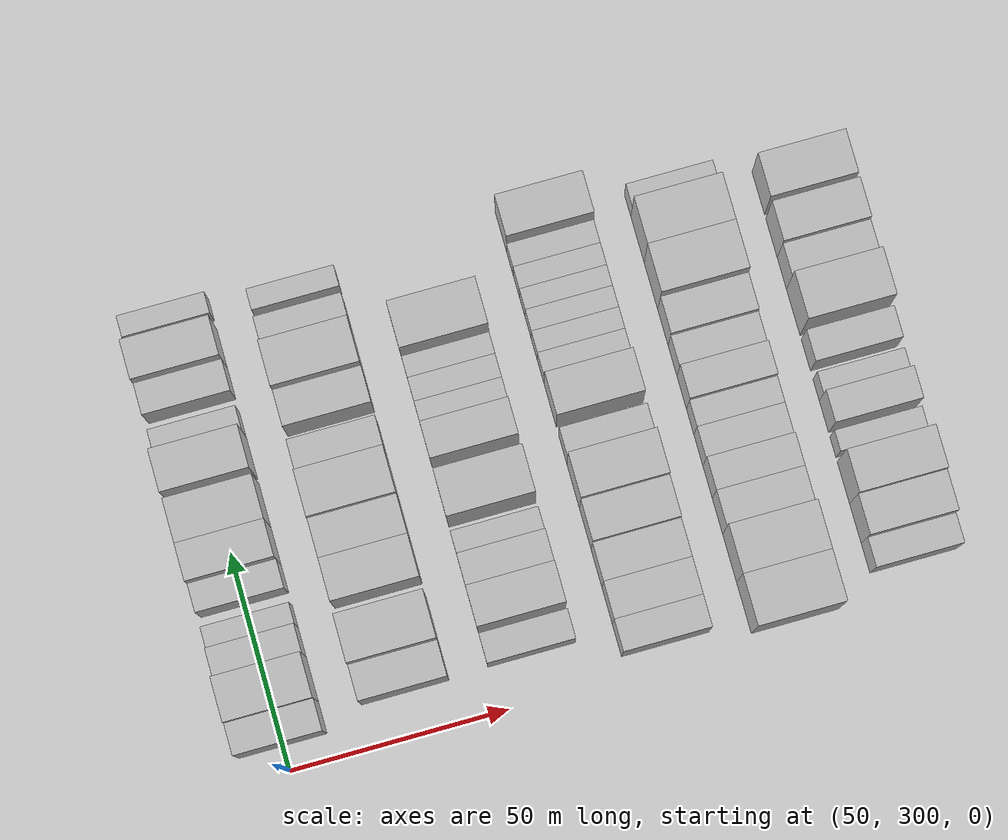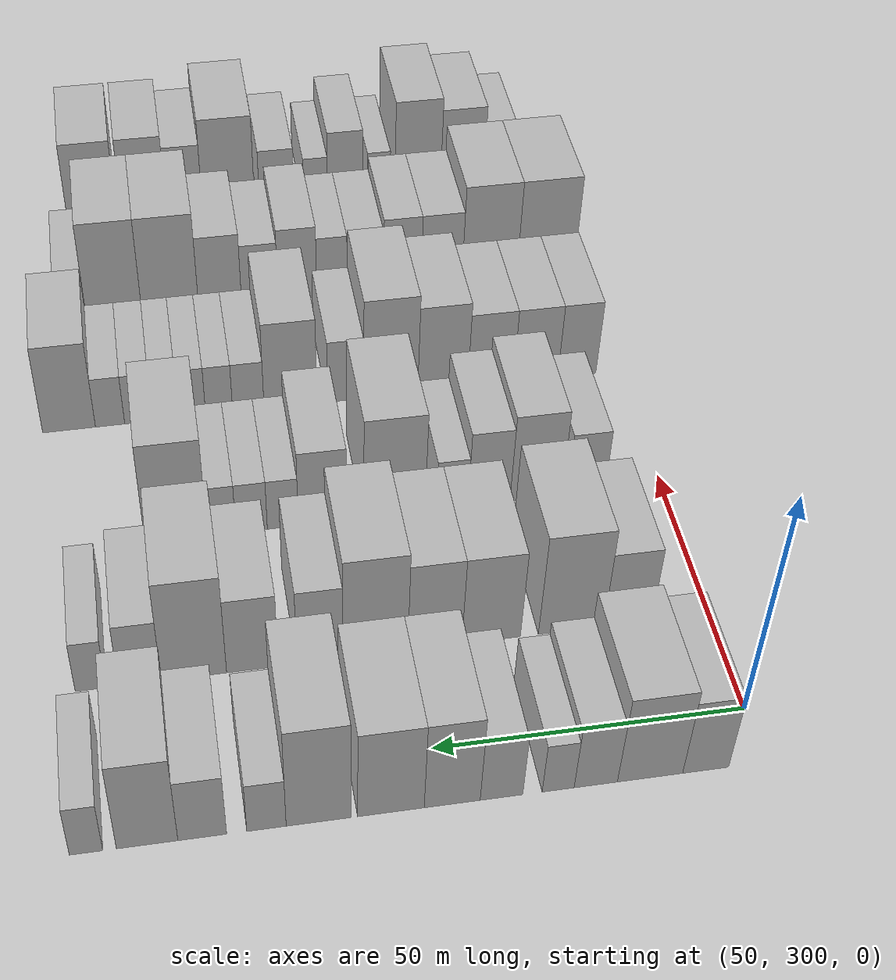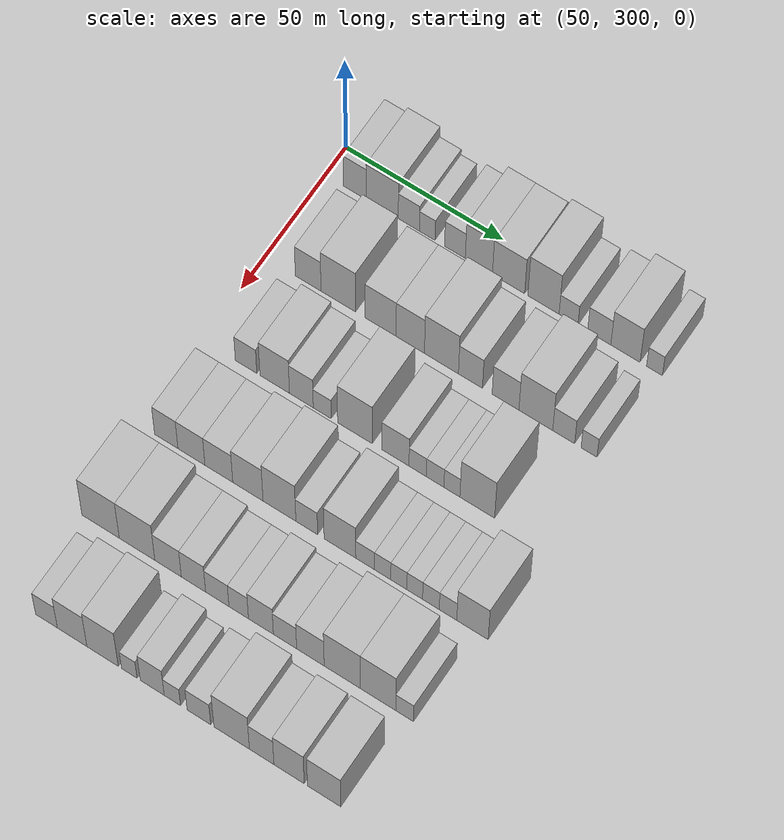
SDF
<sdf version="1.6">
 <world name="default">
  <model name="building_94">
   <static>1</static>
   <pose>50.0000 309.3351 0 0.000000 0.000000 0.000000</pose>
   <link name="link">
    <pose>0 0 9.00 0 0 0</pose>
    <collision name="collision"><geometry><box><size>20.0000 7.2665 18.0000</size></box></geometry></collision>
    <visual name="visual">
     <cast_shadows>0</cast_shadows>
     <geometry><box><size>20.0000 7.2665 18.0000</size></box></geometry>
     <material>
      <script>
       <uri>model://HANNAS_wall/materials/scripts</uri>
       <uri>model://HANNAS_wall/materials/textures</uri>
       <name>vrc/HANNAS_wall</name>
      </script>
     </material>
    </visual>
   </link>
  </model>
  <model name="building_95">
   <static>1</static>
   <pose>50.0000 318.0933 0 0.000000 0.000000 0.000000</pose>
   <link name="link">
    <pose>0 0 10.50 0 0 0</pose>
    <collision name="collision"><geometry><box><size>20.0000 10.2501 21.0000</size></box></geometry></collision>
    <visual name="visual">
     <cast_shadows>0</cast_shadows>
     <geometry><box><size>20.0000 10.2501 21.0000</size></box></geometry>
     <material>
      <script>
       <uri>model://HANNAS_wall/materials/scripts</uri>
       <uri>model://HANNAS_wall/materials/textures</uri>
       <name>vrc/HANNAS_wall</name>
      </script>
     </material>
    </visual>
   </link>
  </model>
  <model name="building_96">
   <static>1</static>
   <pose>50.0000 326.5916 0 0.000000 0.000000 0.000000</pose>
   <link name="link">
    <pose>0 0 7.50 0 0 0</pose>
    <collision name="collision"><geometry><box><size>20.0000 6.7465 15.0000</size></box></geometry></collision>
    <visual name="visual">
     <cast_shadows>0</cast_shadows>
     <geometry><box><size>20.0000 6.7465 15.0000</size></box></geometry>
     <material>
      <script>
       <uri>model://HANNAS_wall/materials/scripts</uri>
       <uri>model://HANNAS_wall/materials/textures</uri>
       <name>vrc/HANNAS_wall</name>
      </script>
     </material>
    </visual>
   </link>
  </model>
  <model name="building_97">
   <static>1</static>
   <pose>50.0000 332.4436 0 0.000000 0.000000 0.000000</pose>
   <link name="link">
    <pose>0 0 6.00 0 0 0</pose>
    <collision name="collision"><geometry><box><size>20.0000 4.9574 12.0000</size></box></geometry></collision>
    <visual name="visual">
     <cast_shadows>0</cast_shadows>
     <geometry><box><size>20.0000 4.9574 12.0000</size></box></geometry>
     <material>
      <script>
       <uri>model://HANNAS_wall/materials/scripts</uri>
       <uri>model://HANNAS_wall/materials/textures</uri>
       <name>vrc/HANNAS_wall</name>
      </script>
     </material>
    </visual>
   </link>
  </model>
  <model name="building_98">
   <static>1</static>
   <pose>50.0000 341.2029 0 0.000000 0.000000 0.000000</pose>
   <link name="link">
    <pose>0 0 7.50 0 0 0</pose>
    <collision name="collision"><geometry><box><size>20.0000 6.5612 15.0000</size></box></geometry></collision>
    <visual name="visual">
     <cast_shadows>0</cast_shadows>
     <geometry><box><size>20.0000 6.5612 15.0000</size></box></geometry>
     <material>
      <script>
       <uri>model://HANNAS_wall/materials/scripts</uri>
       <uri>model://HANNAS_wall/materials/textures</uri>
       <name>vrc/HANNAS_wall</name>
      </script>
     </material>
    </visual>
   </link>
  </model>
  <model name="building_99">
   <static>1</static>
   <pose>50.0000 348.7672 0 0.000000 0.000000 0.000000</pose>
   <link name="link">
    <pose>0 0 10.50 0 0 0</pose>
    <collision name="collision"><geometry><box><size>20.0000 8.5673 21.0000</size></box></geometry></collision>
    <visual name="visual">
     <cast_shadows>0</cast_shadows>
     <geometry><box><size>20.0000 8.5673 21.0000</size></box></geometry>
     <material>
      <script>
       <uri>model://HANNAS_wall/materials/scripts</uri>
       <uri>model://HANNAS_wall/materials/textures</uri>
       <name>vrc/HANNAS_wall</name>
      </script>
     </material>
    </visual>
   </link>
  </model>
  <model name="building_100">
   <static>1</static>
   <pose>50.0000 358.1106 0 0.000000 0.000000 0.000000</pose>
   <link name="link">
    <pose>0 0 10.50 0 0 0</pose>
    <collision name="collision"><geometry><box><size>20.0000 10.1196 21.0000</size></box></geometry></collision>
    <visual name="visual">
     <cast_shadows>0</cast_shadows>
     <geometry><box><size>20.0000 10.1196 21.0000</size></box></geometry>
     <material>
      <script>
       <uri>model://HANNAS_wall/materials/scripts</uri>
       <uri>model://HANNAS_wall/materials/textures</uri>
       <name>vrc/HANNAS_wall</name>
      </script>
     </material>
    </visual>
   </link>
  </model>
  <model name="building_101">
   <static>1</static>
   <pose>50.0000 369.0518 0 0.000000 0.000000 0.000000</pose>
   <link name="link">
    <pose>0 0 12.00 0 0 0</pose>
    <collision name="collision"><geometry><box><size>20.0000 9.7628 24.0000</size></box></geometry></collision>
    <visual name="visual">
     <cast_shadows>0</cast_shadows>
     <geometry><box><size>20.0000 9.7628 24.0000</size></box></geometry>
     <material>
      <script>
       <uri>model://HANNAS_wall/materials/scripts</uri>
       <uri>model://HANNAS_wall/materials/textures</uri>
       <name>vrc/HANNAS_wall</name>
      </script>
     </material>
    </visual>
   </link>
  </model>
  <model name="building_102">
   <static>1</static>
   <pose>50.0000 376.8767 0 0.000000 0.000000 0.000000</pose>
   <link name="link">
    <pose>0 0 6.00 0 0 0</pose>
    <collision name="collision"><geometry><box><size>20.0000 5.8868 12.0000</size></box></geometry></collision>
    <visual name="visual">
     <cast_shadows>0</cast_shadows>
     <geometry><box><size>20.0000 5.8868 12.0000</size></box></geometry>
     <material>
      <script>
       <uri>model://HANNAS_wall/materials/scripts</uri>
       <uri>model://HANNAS_wall/materials/textures</uri>
       <name>vrc/HANNAS_wall</name>
      </script>
     </material>
    </visual>
   </link>
  </model>
  <model name="building_103">
   <static>1</static>
   <pose>50.0000 386.4390 0 0.000000 0.000000 0.000000</pose>
   <link name="link">
    <pose>0 0 7.50 0 0 0</pose>
    <collision name="collision"><geometry><box><size>20.0000 7.2378 15.0000</size></box></geometry></collision>
    <visual name="visual">
     <cast_shadows>0</cast_shadows>
     <geometry><box><size>20.0000 7.2378 15.0000</size></box></geometry>
     <material>
      <script>
       <uri>model://HANNAS_wall/materials/scripts</uri>
       <uri>model://HANNAS_wall/materials/textures</uri>
       <name>vrc/HANNAS_wall</name>
      </script>
     </material>
    </visual>
   </link>
  </model>
  <model name="building_104">
   <static>1</static>
   <pose>50.0000 394.5931 0 0.000000 0.000000 0.000000</pose>
   <link name="link">
    <pose>0 0 10.50 0 0 0</pose>
    <collision name="collision"><geometry><box><size>20.0000 9.0703 21.0000</size></box></geometry></collision>
    <visual name="visual">
     <cast_shadows>0</cast_shadows>
     <geometry><box><size>20.0000 9.0703 21.0000</size></box></geometry>
     <material>
      <script>
       <uri>model://HANNAS_wall/materials/scripts</uri>
       <uri>model://HANNAS_wall/materials/textures</uri>
       <name>vrc/HANNAS_wall</name>
      </script>
     </material>
    </visual>
   </link>
  </model>
  <model name="building_105">
   <static>1</static>
   <pose>50.0000 403.5756 0 0.000000 0.000000 0.000000</pose>
   <link name="link">
    <pose>0 0 6.00 0 0 0</pose>
    <collision name="collision"><geometry><box><size>20.0000 4.8948 12.0000</size></box></geometry></collision>
    <visual name="visual">
     <cast_shadows>0</cast_shadows>
     <geometry><box><size>20.0000 4.8948 12.0000</size></box></geometry>
     <material>
      <script>
       <uri>model://HANNAS_wall/materials/scripts</uri>
       <uri>model://HANNAS_wall/materials/textures</uri>
       <name>vrc/HANNAS_wall</name>
      </script>
     </material>
    </visual>
   </link>
  </model>
  <model name="building_201">
   <static>1</static>
   <pose>79.0000 313.8096 0 0.000000 0.000000 0.000000</pose>
   <link name="link">
    <pose>0 0 9.00 0 0 0</pose>
    <collision name="collision"><geometry><box><size>20.0000 8.1680 18.0000</size></box></geometry></collision>
    <visual name="visual">
     <cast_shadows>0</cast_shadows>
     <geometry><box><size>20.0000 8.1680 18.0000</size></box></geometry>
     <material>
      <script>
       <uri>model://HANNAS_wall/materials/scripts</uri>
       <uri>model://HANNAS_wall/materials/textures</uri>
       <name>vrc/HANNAS_wall</name>
      </script>
     </material>
    </visual>
   </link>
  </model>
  <model name="building_202">
   <static>1</static>
   <pose>79.0000 323.3713 0 0.000000 0.000000 0.000000</pose>
   <link name="link">
    <pose>0 0 12.00 0 0 0</pose>
    <collision name="collision"><geometry><box><size>20.0000 10.9554 24.0000</size></box></geometry></collision>
    <visual name="visual">
     <cast_shadows>0</cast_shadows>
     <geometry><box><size>20.0000 10.9554 24.0000</size></box></geometry>
     <material>
      <script>
       <uri>model://HANNAS_wall/materials/scripts</uri>
       <uri>model://HANNAS_wall/materials/textures</uri>
       <name>vrc/HANNAS_wall</name>
      </script>
     </material>
    </visual>
   </link>
  </model>
  <model name="building_203">
   <static>1</static>
   <pose>79.0000 336.7160 0 0.000000 0.000000 0.000000</pose>
   <link name="link">
    <pose>0 0 10.50 0 0 0</pose>
    <collision name="collision"><geometry><box><size>20.0000 9.7339 21.0000</size></box></geometry></collision>
    <visual name="visual">
     <cast_shadows>0</cast_shadows>
     <geometry><box><size>20.0000 9.7339 21.0000</size></box></geometry>
     <material>
      <script>
       <uri>model://HANNAS_wall/materials/scripts</uri>
       <uri>model://HANNAS_wall/materials/textures</uri>
       <name>vrc/HANNAS_wall</name>
      </script>
     </material>
    </visual>
   </link>
  </model>
  <model name="building_204">
   <static>1</static>
   <pose>79.0000 346.0433 0 0.000000 0.000000 0.000000</pose>
   <link name="link">
    <pose>0 0 10.50 0 0 0</pose>
    <collision name="collision"><geometry><box><size>20.0000 8.9207 21.0000</size></box></geometry></collision>
    <visual name="visual">
     <cast_shadows>0</cast_shadows>
     <geometry><box><size>20.0000 8.9207 21.0000</size></box></geometry>
     <material>
      <script>
       <uri>model://HANNAS_wall/materials/scripts</uri>
       <uri>model://HANNAS_wall/materials/textures</uri>
       <name>vrc/HANNAS_wall</name>
      </script>
     </material>
    </visual>
   </link>
  </model>
  <model name="building_205">
   <static>1</static>
   <pose>79.0000 355.8234 0 0.000000 0.000000 0.000000</pose>
   <link name="link">
    <pose>0 0 12.00 0 0 0</pose>
    <collision name="collision"><geometry><box><size>20.0000 10.6395 24.0000</size></box></geometry></collision>
    <visual name="visual">
     <cast_shadows>0</cast_shadows>
     <geometry><box><size>20.0000 10.6395 24.0000</size></box></geometry>
     <material>
      <script>
       <uri>model://HANNAS_wall/materials/scripts</uri>
       <uri>model://HANNAS_wall/materials/textures</uri>
       <name>vrc/HANNAS_wall</name>
      </script>
     </material>
    </visual>
   </link>
  </model>
  <model name="building_206">
   <static>1</static>
   <pose>79.0000 364.8946 0 0.000000 0.000000 0.000000</pose>
   <link name="link">
    <pose>0 0 9.00 0 0 0</pose>
    <collision name="collision"><geometry><box><size>20.0000 7.5029 18.0000</size></box></geometry></collision>
    <visual name="visual">
     <cast_shadows>0</cast_shadows>
     <geometry><box><size>20.0000 7.5029 18.0000</size></box></geometry>
     <material>
      <script>
       <uri>model://HANNAS_wall/materials/scripts</uri>
       <uri>model://HANNAS_wall/materials/textures</uri>
       <name>vrc/HANNAS_wall</name>
      </script>
     </material>
    </visual>
   </link>
  </model>
  <model name="building_207">
   <static>1</static>
   <pose>79.0000 375.8046 0 0.000000 0.000000 0.000000</pose>
   <link name="link">
    <pose>0 0 9.00 0 0 0</pose>
    <collision name="collision"><geometry><box><size>20.0000 8.3171 18.0000</size></box></geometry></collision>
    <visual name="visual">
     <cast_shadows>0</cast_shadows>
     <geometry><box><size>20.0000 8.3171 18.0000</size></box></geometry>
     <material>
      <script>
       <uri>model://HANNAS_wall/materials/scripts</uri>
       <uri>model://HANNAS_wall/materials/textures</uri>
       <name>vrc/HANNAS_wall</name>
      </script>
     </material>
    </visual>
   </link>
  </model>
  <model name="building_208">
   <static>1</static>
   <pose>79.0000 385.2007 0 0.000000 0.000000 0.000000</pose>
   <link name="link">
    <pose>0 0 12.00 0 0 0</pose>
    <collision name="collision"><geometry><box><size>20.0000 10.4751 24.0000</size></box></geometry></collision>
    <visual name="visual">
     <cast_shadows>0</cast_shadows>
     <geometry><box><size>20.0000 10.4751 24.0000</size></box></geometry>
     <material>
      <script>
       <uri>model://HANNAS_wall/materials/scripts</uri>
       <uri>model://HANNAS_wall/materials/textures</uri>
       <name>vrc/HANNAS_wall</name>
      </script>
     </material>
    </visual>
   </link>
  </model>
  <model name="building_209">
   <static>1</static>
   <pose>79.0000 393.8212 0 0.000000 0.000000 0.000000</pose>
   <link name="link">
    <pose>0 0 7.50 0 0 0</pose>
    <collision name="collision"><geometry><box><size>20.0000 6.7659 15.0000</size></box></geometry></collision>
    <visual name="visual">
     <cast_shadows>0</cast_shadows>
     <geometry><box><size>20.0000 6.7659 15.0000</size></box></geometry>
     <material>
      <script>
       <uri>model://HANNAS_wall/materials/scripts</uri>
       <uri>model://HANNAS_wall/materials/textures</uri>
       <name>vrc/HANNAS_wall</name>
      </script>
     </material>
    </visual>
   </link>
  </model>
  <model name="building_210">
   <static>1</static>
   <pose>79.0000 401.6524 0 0.000000 0.000000 0.000000</pose>
   <link name="link">
    <pose>0 0 6.00 0 0 0</pose>
    <collision name="collision"><geometry><box><size>20.0000 4.8963 12.0000</size></box></geometry></collision>
    <visual name="visual">
     <cast_shadows>0</cast_shadows>
     <geometry><box><size>20.0000 4.8963 12.0000</size></box></geometry>
     <material>
      <script>
       <uri>model://HANNAS_wall/materials/scripts</uri>
       <uri>model://HANNAS_wall/materials/textures</uri>
       <name>vrc/HANNAS_wall</name>
      </script>
     </material>
    </visual>
   </link>
  </model>
  <model name="building_319">
   <static>1</static>
   <pose>108.0000 313.6046 0 0.000000 0.000000 0.000000</pose>
   <link name="link">
    <pose>0 0 7.50 0 0 0</pose>
    <collision name="collision"><geometry><box><size>20.0000 6.7968 15.0000</size></box></geometry></collision>
    <visual name="visual">
     <cast_shadows>0</cast_shadows>
     <geometry><box><size>20.0000 6.7968 15.0000</size></box></geometry>
     <material>
      <script>
       <uri>model://HANNAS_wall/materials/scripts</uri>
       <uri>model://HANNAS_wall/materials/textures</uri>
       <name>vrc/HANNAS_wall</name>
      </script>
     </material>
    </visual>
   </link>
  </model>
  <model name="building_320">
   <static>1</static>
   <pose>108.0000 322.6522 0 0.000000 0.000000 0.000000</pose>
   <link name="link">
    <pose>0 0 10.50 0 0 0</pose>
    <collision name="collision"><geometry><box><size>20.0000 9.2984 21.0000</size></box></geometry></collision>
    <visual name="visual">
     <cast_shadows>0</cast_shadows>
     <geometry><box><size>20.0000 9.2984 21.0000</size></box></geometry>
     <material>
      <script>
       <uri>model://HANNAS_wall/materials/scripts</uri>
       <uri>model://HANNAS_wall/materials/textures</uri>
       <name>vrc/HANNAS_wall</name>
      </script>
     </material>
    </visual>
   </link>
  </model>
  <model name="building_321">
   <static>1</static>
   <pose>108.0000 331.0445 0 0.000000 0.000000 0.000000</pose>
   <link name="link">
    <pose>0 0 9.00 0 0 0</pose>
    <collision name="collision"><geometry><box><size>20.0000 7.4862 18.0000</size></box></geometry></collision>
    <visual name="visual">
     <cast_shadows>0</cast_shadows>
     <geometry><box><size>20.0000 7.4862 18.0000</size></box></geometry>
     <material>
      <script>
       <uri>model://HANNAS_wall/materials/scripts</uri>
       <uri>model://HANNAS_wall/materials/textures</uri>
       <name>vrc/HANNAS_wall</name>
      </script>
     </material>
    </visual>
   </link>
  </model>
  <model name="building_322">
   <static>1</static>
   <pose>108.0000 337.6013 0 0.000000 0.000000 0.000000</pose>
   <link name="link">
    <pose>0 0 6.00 0 0 0</pose>
    <collision name="collision"><geometry><box><size>20.0000 5.6273 12.0000</size></box></geometry></collision>
    <visual name="visual">
     <cast_shadows>0</cast_shadows>
     <geometry><box><size>20.0000 5.6273 12.0000</size></box></geometry>
     <material>
      <script>
       <uri>model://HANNAS_wall/materials/scripts</uri>
       <uri>model://HANNAS_wall/materials/textures</uri>
       <name>vrc/HANNAS_wall</name>
      </script>
     </material>
    </visual>
   </link>
  </model>
  <model name="building_323">
   <static>1</static>
   <pose>108.0000 347.8295 0 0.000000 0.000000 0.000000</pose>
   <link name="link">
    <pose>0 0 12.00 0 0 0</pose>
    <collision name="collision"><geometry><box><size>20.0000 10.8292 24.0000</size></box></geometry></collision>
    <visual name="visual">
     <cast_shadows>0</cast_shadows>
     <geometry><box><size>20.0000 10.8292 24.0000</size></box></geometry>
     <material>
      <script>
       <uri>model://HANNAS_wall/materials/scripts</uri>
       <uri>model://HANNAS_wall/materials/textures</uri>
       <name>vrc/HANNAS_wall</name>
      </script>
     </material>
    </visual>
   </link>
  </model>
  <model name="building_324">
   <static>1</static>
   <pose>108.0000 360.4538 0 0.000000 0.000000 0.000000</pose>
   <link name="link">
    <pose>0 0 9.00 0 0 0</pose>
    <collision name="collision"><geometry><box><size>20.0000 8.4195 18.0000</size></box></geometry></collision>
    <visual name="visual">
     <cast_shadows>0</cast_shadows>
     <geometry><box><size>20.0000 8.4195 18.0000</size></box></geometry>
     <material>
      <script>
       <uri>model://HANNAS_wall/materials/scripts</uri>
       <uri>model://HANNAS_wall/materials/textures</uri>
       <name>vrc/HANNAS_wall</name>
      </script>
     </material>
    </visual>
   </link>
  </model>
  <model name="building_325">
   <static>1</static>
   <pose>108.0000 367.3556 0 0.000000 0.000000 0.000000</pose>
   <link name="link">
    <pose>0 0 6.00 0 0 0</pose>
    <collision name="collision"><geometry><box><size>20.0000 5.3840 12.0000</size></box></geometry></collision>
    <visual name="visual">
     <cast_shadows>0</cast_shadows>
     <geometry><box><size>20.0000 5.3840 12.0000</size></box></geometry>
     <material>
      <script>
       <uri>model://HANNAS_wall/materials/scripts</uri>
       <uri>model://HANNAS_wall/materials/textures</uri>
       <name>vrc/HANNAS_wall</name>
      </script>
     </material>
    </visual>
   </link>
  </model>
  <model name="building_326">
   <static>1</static>
   <pose>108.0000 372.7697 0 0.000000 0.000000 0.000000</pose>
   <link name="link">
    <pose>0 0 6.00 0 0 0</pose>
    <collision name="collision"><geometry><box><size>20.0000 5.4442 12.0000</size></box></geometry></collision>
    <visual name="visual">
     <cast_shadows>0</cast_shadows>
     <geometry><box><size>20.0000 5.4442 12.0000</size></box></geometry>
     <material>
      <script>
       <uri>model://HANNAS_wall/materials/scripts</uri>
       <uri>model://HANNAS_wall/materials/textures</uri>
       <name>vrc/HANNAS_wall</name>
      </script>
     </material>
    </visual>
   </link>
  </model>
  <model name="building_327">
   <static>1</static>
   <pose>108.0000 377.9632 0 0.000000 0.000000 0.000000</pose>
   <link name="link">
    <pose>0 0 6.00 0 0 0</pose>
    <collision name="collision"><geometry><box><size>20.0000 4.9428 12.0000</size></box></geometry></collision>
    <visual name="visual">
     <cast_shadows>0</cast_shadows>
     <geometry><box><size>20.0000 4.9428 12.0000</size></box></geometry>
     <material>
      <script>
       <uri>model://HANNAS_wall/materials/scripts</uri>
       <uri>model://HANNAS_wall/materials/textures</uri>
       <name>vrc/HANNAS_wall</name>
      </script>
     </material>
    </visual>
   </link>
  </model>
  <model name="building_328">
   <static>1</static>
   <pose>108.0000 385.7849 0 0.000000 0.000000 0.000000</pose>
   <link name="link">
    <pose>0 0 12.00 0 0 0</pose>
    <collision name="collision"><geometry><box><size>20.0000 10.7004 24.0000</size></box></geometry></collision>
    <visual name="visual">
     <cast_shadows>0</cast_shadows>
     <geometry><box><size>20.0000 10.7004 24.0000</size></box></geometry>
     <material>
      <script>
       <uri>model://HANNAS_wall/materials/scripts</uri>
       <uri>model://HANNAS_wall/materials/textures</uri>
       <name>vrc/HANNAS_wall</name>
      </script>
     </material>
    </visual>
   </link>
  </model>
  <model name="building_428">
   <static>1</static>
   <pose>137.0000 308.1258 0 0.000000 0.000000 0.000000</pose>
   <link name="link">
    <pose>0 0 9.00 0 0 0</pose>
    <collision name="collision"><geometry><box><size>20.0000 7.3621 18.0000</size></box></geometry></collision>
    <visual name="visual">
     <cast_shadows>0</cast_shadows>
     <geometry><box><size>20.0000 7.3621 18.0000</size></box></geometry>
     <material>
      <script>
       <uri>model://HANNAS_wall/materials/scripts</uri>
       <uri>model://HANNAS_wall/materials/textures</uri>
       <name>vrc/HANNAS_wall</name>
      </script>
     </material>
    </visual>
   </link>
  </model>
  <model name="building_429">
   <static>1</static>
   <pose>137.0000 316.0578 0 0.000000 0.000000 0.000000</pose>
   <link name="link">
    <pose>0 0 9.00 0 0 0</pose>
    <collision name="collision"><geometry><box><size>20.0000 8.5018 18.0000</size></box></geometry></collision>
    <visual name="visual">
     <cast_shadows>0</cast_shadows>
     <geometry><box><size>20.0000 8.5018 18.0000</size></box></geometry>
     <material>
      <script>
       <uri>model://HANNAS_wall/materials/scripts</uri>
       <uri>model://HANNAS_wall/materials/textures</uri>
       <name>vrc/HANNAS_wall</name>
      </script>
     </material>
    </visual>
   </link>
  </model>
  <model name="building_430">
   <static>1</static>
   <pose>137.0000 324.6746 0 0.000000 0.000000 0.000000</pose>
   <link name="link">
    <pose>0 0 9.00 0 0 0</pose>
    <collision name="collision"><geometry><box><size>20.0000 8.7320 18.0000</size></box></geometry></collision>
    <visual name="visual">
     <cast_shadows>0</cast_shadows>
     <geometry><box><size>20.0000 8.7320 18.0000</size></box></geometry>
     <material>
      <script>
       <uri>model://HANNAS_wall/materials/scripts</uri>
       <uri>model://HANNAS_wall/materials/textures</uri>
       <name>vrc/HANNAS_wall</name>
      </script>
     </material>
    </visual>
   </link>
  </model>
  <model name="building_431">
   <static>1</static>
   <pose>137.0000 333.7770 0 0.000000 0.000000 0.000000</pose>
   <link name="link">
    <pose>0 0 10.50 0 0 0</pose>
    <collision name="collision"><geometry><box><size>20.0000 9.4727 21.0000</size></box></geometry></collision>
    <visual name="visual">
     <cast_shadows>0</cast_shadows>
     <geometry><box><size>20.0000 9.4727 21.0000</size></box></geometry>
     <material>
      <script>
       <uri>model://HANNAS_wall/materials/scripts</uri>
       <uri>model://HANNAS_wall/materials/textures</uri>
       <name>vrc/HANNAS_wall</name>
      </script>
     </material>
    </visual>
   </link>
  </model>
  <model name="building_432">
   <static>1</static>
   <pose>137.0000 343.6271 0 0.000000 0.000000 0.000000</pose>
   <link name="link">
    <pose>0 0 12.00 0 0 0</pose>
    <collision name="collision"><geometry><box><size>20.0000 10.2276 24.0000</size></box></geometry></collision>
    <visual name="visual">
     <cast_shadows>0</cast_shadows>
     <geometry><box><size>20.0000 10.2276 24.0000</size></box></geometry>
     <material>
      <script>
       <uri>model://HANNAS_wall/materials/scripts</uri>
       <uri>model://HANNAS_wall/materials/textures</uri>
       <name>vrc/HANNAS_wall</name>
      </script>
     </material>
    </visual>
   </link>
  </model>
  <model name="building_433">
   <static>1</static>
   <pose>137.0000 352.1221 0 0.000000 0.000000 0.000000</pose>
   <link name="link">
    <pose>0 0 7.50 0 0 0</pose>
    <collision name="collision"><geometry><box><size>20.0000 6.7624 15.0000</size></box></geometry></collision>
    <visual name="visual">
     <cast_shadows>0</cast_shadows>
     <geometry><box><size>20.0000 6.7624 15.0000</size></box></geometry>
     <material>
      <script>
       <uri>model://HANNAS_wall/materials/scripts</uri>
       <uri>model://HANNAS_wall/materials/textures</uri>
       <name>vrc/HANNAS_wall</name>
      </script>
     </material>
    </visual>
   </link>
  </model>
  <model name="building_434">
   <static>1</static>
   <pose>137.0000 362.4011 0 0.000000 0.000000 0.000000</pose>
   <link name="link">
    <pose>0 0 10.50 0 0 0</pose>
    <collision name="collision"><geometry><box><size>20.0000 9.7956 21.0000</size></box></geometry></collision>
    <visual name="visual">
     <cast_shadows>0</cast_shadows>
     <geometry><box><size>20.0000 9.7956 21.0000</size></box></geometry>
     <material>
      <script>
       <uri>model://HANNAS_wall/materials/scripts</uri>
       <uri>model://HANNAS_wall/materials/textures</uri>
       <name>vrc/HANNAS_wall</name>
      </script>
     </material>
    </visual>
   </link>
  </model>
  <model name="building_435">
   <static>1</static>
   <pose>137.0000 370.2016 0 0.000000 0.000000 0.000000</pose>
   <link name="link">
    <pose>0 0 6.00 0 0 0</pose>
    <collision name="collision"><geometry><box><size>20.0000 5.8054 12.0000</size></box></geometry></collision>
    <visual name="visual">
     <cast_shadows>0</cast_shadows>
     <geometry><box><size>20.0000 5.8054 12.0000</size></box></geometry>
     <material>
      <script>
       <uri>model://HANNAS_wall/materials/scripts</uri>
       <uri>model://HANNAS_wall/materials/textures</uri>
       <name>vrc/HANNAS_wall</name>
      </script>
     </material>
    </visual>
   </link>
  </model>
  <model name="building_436">
   <static>1</static>
   <pose>137.0000 375.5960 0 0.000000 0.000000 0.000000</pose>
   <link name="link">
    <pose>0 0 6.00 0 0 0</pose>
    <collision name="collision"><geometry><box><size>20.0000 4.9834 12.0000</size></box></geometry></collision>
    <visual name="visual">
     <cast_shadows>0</cast_shadows>
     <geometry><box><size>20.0000 4.9834 12.0000</size></box></geometry>
     <material>
      <script>
       <uri>model://HANNAS_wall/materials/scripts</uri>
       <uri>model://HANNAS_wall/materials/textures</uri>
       <name>vrc/HANNAS_wall</name>
      </script>
     </material>
    </visual>
   </link>
  </model>
  <model name="building_437">
   <static>1</static>
   <pose>137.0000 380.5612 0 0.000000 0.000000 0.000000</pose>
   <link name="link">
    <pose>0 0 6.00 0 0 0</pose>
    <collision name="collision"><geometry><box><size>20.0000 4.9469 12.0000</size></box></geometry></collision>
    <visual name="visual">
     <cast_shadows>0</cast_shadows>
     <geometry><box><size>20.0000 4.9469 12.0000</size></box></geometry>
     <material>
      <script>
       <uri>model://HANNAS_wall/materials/scripts</uri>
       <uri>model://HANNAS_wall/materials/textures</uri>
       <name>vrc/HANNAS_wall</name>
      </script>
     </material>
    </visual>
   </link>
  </model>
  <model name="building_438">
   <static>1</static>
   <pose>137.0000 385.4380 0 0.000000 0.000000 0.000000</pose>
   <link name="link">
    <pose>0 0 6.00 0 0 0</pose>
    <collision name="collision"><geometry><box><size>20.0000 4.8066 12.0000</size></box></geometry></collision>
    <visual name="visual">
     <cast_shadows>0</cast_shadows>
     <geometry><box><size>20.0000 4.8066 12.0000</size></box></geometry>
     <material>
      <script>
       <uri>model://HANNAS_wall/materials/scripts</uri>
       <uri>model://HANNAS_wall/materials/textures</uri>
       <name>vrc/HANNAS_wall</name>
      </script>
     </material>
    </visual>
   </link>
  </model>
  <model name="building_439">
   <static>1</static>
   <pose>137.0000 390.3975 0 0.000000 0.000000 0.000000</pose>
   <link name="link">
    <pose>0 0 6.00 0 0 0</pose>
    <collision name="collision"><geometry><box><size>20.0000 5.1124 12.0000</size></box></geometry></collision>
    <visual name="visual">
     <cast_shadows>0</cast_shadows>
     <geometry><box><size>20.0000 5.1124 12.0000</size></box></geometry>
     <material>
      <script>
       <uri>model://HANNAS_wall/materials/scripts</uri>
       <uri>model://HANNAS_wall/materials/textures</uri>
       <name>vrc/HANNAS_wall</name>
      </script>
     </material>
    </visual>
   </link>
  </model>
  <model name="building_440">
   <static>1</static>
   <pose>137.0000 395.6224 0 0.000000 0.000000 0.000000</pose>
   <link name="link">
    <pose>0 0 6.00 0 0 0</pose>
    <collision name="collision"><geometry><box><size>20.0000 5.3375 12.0000</size></box></geometry></collision>
    <visual name="visual">
     <cast_shadows>0</cast_shadows>
     <geometry><box><size>20.0000 5.3375 12.0000</size></box></geometry>
     <material>
      <script>
       <uri>model://HANNAS_wall/materials/scripts</uri>
       <uri>model://HANNAS_wall/materials/textures</uri>
       <name>vrc/HANNAS_wall</name>
      </script>
     </material>
    </visual>
   </link>
  </model>
  <model name="building_441">
   <static>1</static>
   <pose>137.0000 403.0795 0 0.000000 0.000000 0.000000</pose>
   <link name="link">
    <pose>0 0 10.50 0 0 0</pose>
    <collision name="collision"><geometry><box><size>20.0000 9.5769 21.0000</size></box></geometry></collision>
    <visual name="visual">
     <cast_shadows>0</cast_shadows>
     <geometry><box><size>20.0000 9.5769 21.0000</size></box></geometry>
     <material>
      <script>
       <uri>model://HANNAS_wall/materials/scripts</uri>
       <uri>model://HANNAS_wall/materials/textures</uri>
       <name>vrc/HANNAS_wall</name>
      </script>
     </material>
    </visual>
   </link>
  </model>
  <model name="building_545">
   <static>1</static>
   <pose>166.0000 307.4736 0 0.000000 0.000000 0.000000</pose>
   <link name="link">
    <pose>0 0 12.00 0 0 0</pose>
    <collision name="collision"><geometry><box><size>20.0000 11.7153 24.0000</size></box></geometry></collision>
    <visual name="visual">
     <cast_shadows>0</cast_shadows>
     <geometry><box><size>20.0000 11.7153 24.0000</size></box></geometry>
     <material>
      <script>
       <uri>model://HANNAS_wall/materials/scripts</uri>
       <uri>model://HANNAS_wall/materials/textures</uri>
       <name>vrc/HANNAS_wall</name>
      </script>
     </material>
    </visual>
   </link>
  </model>
  <model name="building_546">
   <static>1</static>
   <pose>166.0000 318.9044 0 0.000000 0.000000 0.000000</pose>
   <link name="link">
    <pose>0 0 12.00 0 0 0</pose>
    <collision name="collision"><geometry><box><size>20.0000 11.1465 24.0000</size></box></geometry></collision>
    <visual name="visual">
     <cast_shadows>0</cast_shadows>
     <geometry><box><size>20.0000 11.1465 24.0000</size></box></geometry>
     <material>
      <script>
       <uri>model://HANNAS_wall/materials/scripts</uri>
       <uri>model://HANNAS_wall/materials/textures</uri>
       <name>vrc/HANNAS_wall</name>
      </script>
     </material>
    </visual>
   </link>
  </model>
  <model name="building_547">
   <static>1</static>
   <pose>166.0000 328.6042 0 0.000000 0.000000 0.000000</pose>
   <link name="link">
    <pose>0 0 9.00 0 0 0</pose>
    <collision name="collision"><geometry><box><size>20.0000 8.2530 18.0000</size></box></geometry></collision>
    <visual name="visual">
     <cast_shadows>0</cast_shadows>
     <geometry><box><size>20.0000 8.2530 18.0000</size></box></geometry>
     <material>
      <script>
       <uri>model://HANNAS_wall/materials/scripts</uri>
       <uri>model://HANNAS_wall/materials/textures</uri>
       <name>vrc/HANNAS_wall</name>
      </script>
     </material>
    </visual>
   </link>
  </model>
  <model name="building_548">
   <static>1</static>
   <pose>166.0000 336.5016 0 0.000000 0.000000 0.000000</pose>
   <link name="link">
    <pose>0 0 9.00 0 0 0</pose>
    <collision name="collision"><geometry><box><size>20.0000 7.5419 18.0000</size></box></geometry></collision>
    <visual name="visual">
     <cast_shadows>0</cast_shadows>
     <geometry><box><size>20.0000 7.5419 18.0000</size></box></geometry>
     <material>
      <script>
       <uri>model://HANNAS_wall/materials/scripts</uri>
       <uri>model://HANNAS_wall/materials/textures</uri>
       <name>vrc/HANNAS_wall</name>
      </script>
     </material>
    </visual>
   </link>
  </model>
  <model name="building_549">
   <static>1</static>
   <pose>166.0000 343.8983 0 0.000000 0.000000 0.000000</pose>
   <link name="link">
    <pose>0 0 7.50 0 0 0</pose>
    <collision name="collision"><geometry><box><size>20.0000 7.2516 15.0000</size></box></geometry></collision>
    <visual name="visual">
     <cast_shadows>0</cast_shadows>
     <geometry><box><size>20.0000 7.2516 15.0000</size></box></geometry>
     <material>
      <script>
       <uri>model://HANNAS_wall/materials/scripts</uri>
       <uri>model://HANNAS_wall/materials/textures</uri>
       <name>vrc/HANNAS_wall</name>
      </script>
     </material>
    </visual>
   </link>
  </model>
  <model name="building_550">
   <static>1</static>
   <pose>166.0000 350.5445 0 0.000000 0.000000 0.000000</pose>
   <link name="link">
    <pose>0 0 7.50 0 0 0</pose>
    <collision name="collision"><geometry><box><size>20.0000 6.0407 15.0000</size></box></geometry></collision>
    <visual name="visual">
     <cast_shadows>0</cast_shadows>
     <geometry><box><size>20.0000 6.0407 15.0000</size></box></geometry>
     <material>
      <script>
       <uri>model://HANNAS_wall/materials/scripts</uri>
       <uri>model://HANNAS_wall/materials/textures</uri>
       <name>vrc/HANNAS_wall</name>
      </script>
     </material>
    </visual>
   </link>
  </model>
  <model name="building_551">
   <static>1</static>
   <pose>166.0000 357.4040 0 0.000000 0.000000 0.000000</pose>
   <link name="link">
    <pose>0 0 9.00 0 0 0</pose>
    <collision name="collision"><geometry><box><size>20.0000 7.6783 18.0000</size></box></geometry></collision>
    <visual name="visual">
     <cast_shadows>0</cast_shadows>
     <geometry><box><size>20.0000 7.6783 18.0000</size></box></geometry>
     <material>
      <script>
       <uri>model://HANNAS_wall/materials/scripts</uri>
       <uri>model://HANNAS_wall/materials/textures</uri>
       <name>vrc/HANNAS_wall</name>
      </script>
     </material>
    </visual>
   </link>
  </model>
  <model name="building_552">
   <static>1</static>
   <pose>166.0000 364.8204 0 0.000000 0.000000 0.000000</pose>
   <link name="link">
    <pose>0 0 7.50 0 0 0</pose>
    <collision name="collision"><geometry><box><size>20.0000 7.1547 15.0000</size></box></geometry></collision>
    <visual name="visual">
     <cast_shadows>0</cast_shadows>
     <geometry><box><size>20.0000 7.1547 15.0000</size></box></geometry>
     <material>
      <script>
       <uri>model://HANNAS_wall/materials/scripts</uri>
       <uri>model://HANNAS_wall/materials/textures</uri>
       <name>vrc/HANNAS_wall</name>
      </script>
     </material>
    </visual>
   </link>
  </model>
  <model name="building_553">
   <static>1</static>
   <pose>166.0000 372.6175 0 0.000000 0.000000 0.000000</pose>
   <link name="link">
    <pose>0 0 9.00 0 0 0</pose>
    <collision name="collision"><geometry><box><size>20.0000 8.4395 18.0000</size></box></geometry></collision>
    <visual name="visual">
     <cast_shadows>0</cast_shadows>
     <geometry><box><size>20.0000 8.4395 18.0000</size></box></geometry>
     <material>
      <script>
       <uri>model://HANNAS_wall/materials/scripts</uri>
       <uri>model://HANNAS_wall/materials/textures</uri>
       <name>vrc/HANNAS_wall</name>
      </script>
     </material>
    </visual>
   </link>
  </model>
  <model name="building_554">
   <static>1</static>
   <pose>166.0000 382.3722 0 0.000000 0.000000 0.000000</pose>
   <link name="link">
    <pose>0 0 12.00 0 0 0</pose>
    <collision name="collision"><geometry><box><size>20.0000 11.0698 24.0000</size></box></geometry></collision>
    <visual name="visual">
     <cast_shadows>0</cast_shadows>
     <geometry><box><size>20.0000 11.0698 24.0000</size></box></geometry>
     <material>
      <script>
       <uri>model://HANNAS_wall/materials/scripts</uri>
       <uri>model://HANNAS_wall/materials/textures</uri>
       <name>vrc/HANNAS_wall</name>
      </script>
     </material>
    </visual>
   </link>
  </model>
  <model name="building_555">
   <static>1</static>
   <pose>166.0000 393.2909 0 0.000000 0.000000 0.000000</pose>
   <link name="link">
    <pose>0 0 12.00 0 0 0</pose>
    <collision name="collision"><geometry><box><size>20.0000 10.7676 24.0000</size></box></geometry></collision>
    <visual name="visual">
     <cast_shadows>0</cast_shadows>
     <geometry><box><size>20.0000 10.7676 24.0000</size></box></geometry>
     <material>
      <script>
       <uri>model://HANNAS_wall/materials/scripts</uri>
       <uri>model://HANNAS_wall/materials/textures</uri>
       <name>vrc/HANNAS_wall</name>
      </script>
     </material>
    </visual>
   </link>
  </model>
  <model name="building_556">
   <static>1</static>
   <pose>166.0000 401.3708 0 0.000000 0.000000 0.000000</pose>
   <link name="link">
    <pose>0 0 6.00 0 0 0</pose>
    <collision name="collision"><geometry><box><size>20.0000 5.3921 12.0000</size></box></geometry></collision>
    <visual name="visual">
     <cast_shadows>0</cast_shadows>
     <geometry><box><size>20.0000 5.3921 12.0000</size></box></geometry>
     <material>
      <script>
       <uri>model://HANNAS_wall/materials/scripts</uri>
       <uri>model://HANNAS_wall/materials/textures</uri>
       <name>vrc/HANNAS_wall</name>
      </script>
     </material>
    </visual>
   </link>
  </model>
  <model name="building_659">
   <static>1</static>
   <pose>195.0000 310.7723 0 0.000000 0.000000 0.000000</pose>
   <link name="link">
    <pose>0 0 7.50 0 0 0</pose>
    <collision name="collision"><geometry><box><size>20.0000 6.7994 15.0000</size></box></geometry></collision>
    <visual name="visual">
     <cast_shadows>0</cast_shadows>
     <geometry><box><size>20.0000 6.7994 15.0000</size></box></geometry>
     <material>
      <script>
       <uri>model://HANNAS_wall/materials/scripts</uri>
       <uri>model://HANNAS_wall/materials/textures</uri>
       <name>vrc/HANNAS_wall</name>
      </script>
     </material>
    </visual>
   </link>
  </model>
  <model name="building_660">
   <static>1</static>
   <pose>195.0000 318.7768 0 0.000000 0.000000 0.000000</pose>
   <link name="link">
    <pose>0 0 10.50 0 0 0</pose>
    <collision name="collision"><geometry><box><size>20.0000 9.2095 21.0000</size></box></geometry></collision>
    <visual name="visual">
     <cast_shadows>0</cast_shadows>
     <geometry><box><size>20.0000 9.2095 21.0000</size></box></geometry>
     <material>
      <script>
       <uri>model://HANNAS_wall/materials/scripts</uri>
       <uri>model://HANNAS_wall/materials/textures</uri>
       <name>vrc/HANNAS_wall</name>
      </script>
     </material>
    </visual>
   </link>
  </model>
  <model name="building_661">
   <static>1</static>
   <pose>195.0000 328.2543 0 0.000000 0.000000 0.000000</pose>
   <link name="link">
    <pose>0 0 12.00 0 0 0</pose>
    <collision name="collision"><geometry><box><size>20.0000 9.7456 24.0000</size></box></geometry></collision>
    <visual name="visual">
     <cast_shadows>0</cast_shadows>
     <geometry><box><size>20.0000 9.7456 24.0000</size></box></geometry>
     <material>
      <script>
       <uri>model://HANNAS_wall/materials/scripts</uri>
       <uri>model://HANNAS_wall/materials/textures</uri>
       <name>vrc/HANNAS_wall</name>
      </script>
     </material>
    </visual>
   </link>
  </model>
  <model name="building_662">
   <static>1</static>
   <pose>195.0000 336.5305 0 0.000000 0.000000 0.000000</pose>
   <link name="link">
    <pose>0 0 6.00 0 0 0</pose>
    <collision name="collision"><geometry><box><size>20.0000 4.8069 12.0000</size></box></geometry></collision>
    <visual name="visual">
     <cast_shadows>0</cast_shadows>
     <geometry><box><size>20.0000 4.8069 12.0000</size></box></geometry>
     <material>
      <script>
       <uri>model://HANNAS_wall/materials/scripts</uri>
       <uri>model://HANNAS_wall/materials/textures</uri>
       <name>vrc/HANNAS_wall</name>
      </script>
     </material>
    </visual>
   </link>
  </model>
  <model name="building_663">
   <static>1</static>
   <pose>195.0000 343.6255 0 0.000000 0.000000 0.000000</pose>
   <link name="link">
    <pose>0 0 9.00 0 0 0</pose>
    <collision name="collision"><geometry><box><size>20.0000 7.3832 18.0000</size></box></geometry></collision>
    <visual name="visual">
     <cast_shadows>0</cast_shadows>
     <geometry><box><size>20.0000 7.3832 18.0000</size></box></geometry>
     <material>
      <script>
       <uri>model://HANNAS_wall/materials/scripts</uri>
       <uri>model://HANNAS_wall/materials/textures</uri>
       <name>vrc/HANNAS_wall</name>
      </script>
     </material>
    </visual>
   </link>
  </model>
  <model name="building_664">
   <static>1</static>
   <pose>195.0000 349.8357 0 0.000000 0.000000 0.000000</pose>
   <link name="link">
    <pose>0 0 6.00 0 0 0</pose>
    <collision name="collision"><geometry><box><size>20.0000 5.0371 12.0000</size></box></geometry></collision>
    <visual name="visual">
     <cast_shadows>0</cast_shadows>
     <geometry><box><size>20.0000 5.0371 12.0000</size></box></geometry>
     <material>
      <script>
       <uri>model://HANNAS_wall/materials/scripts</uri>
       <uri>model://HANNAS_wall/materials/textures</uri>
       <name>vrc/HANNAS_wall</name>
      </script>
     </material>
    </visual>
   </link>
  </model>
  <model name="building_665">
   <static>1</static>
   <pose>195.0000 357.9793 0 0.000000 0.000000 0.000000</pose>
   <link name="link">
    <pose>0 0 7.50 0 0 0</pose>
    <collision name="collision"><geometry><box><size>20.0000 7.2501 15.0000</size></box></geometry></collision>
    <visual name="visual">
     <cast_shadows>0</cast_shadows>
     <geometry><box><size>20.0000 7.2501 15.0000</size></box></geometry>
     <material>
      <script>
       <uri>model://HANNAS_wall/materials/scripts</uri>
       <uri>model://HANNAS_wall/materials/textures</uri>
       <name>vrc/HANNAS_wall</name>
      </script>
     </material>
    </visual>
   </link>
  </model>
  <model name="building_666">
   <static>1</static>
   <pose>195.0000 368.0254 0 0.000000 0.000000 0.000000</pose>
   <link name="link">
    <pose>0 0 12.00 0 0 0</pose>
    <collision name="collision"><geometry><box><size>20.0000 10.8421 24.0000</size></box></geometry></collision>
    <visual name="visual">
     <cast_shadows>0</cast_shadows>
     <geometry><box><size>20.0000 10.8421 24.0000</size></box></geometry>
     <material>
      <script>
       <uri>model://HANNAS_wall/materials/scripts</uri>
       <uri>model://HANNAS_wall/materials/textures</uri>
       <name>vrc/HANNAS_wall</name>
      </script>
     </material>
    </visual>
   </link>
  </model>
  <model name="building_667">
   <static>1</static>
   <pose>195.0000 377.1868 0 0.000000 0.000000 0.000000</pose>
   <link name="link">
    <pose>0 0 9.00 0 0 0</pose>
    <collision name="collision"><geometry><box><size>20.0000 7.4806 18.0000</size></box></geometry></collision>
    <visual name="visual">
     <cast_shadows>0</cast_shadows>
     <geometry><box><size>20.0000 7.4806 18.0000</size></box></geometry>
     <material>
      <script>
       <uri>model://HANNAS_wall/materials/scripts</uri>
       <uri>model://HANNAS_wall/materials/textures</uri>
       <name>vrc/HANNAS_wall</name>
      </script>
     </material>
    </visual>
   </link>
  </model>
  <model name="building_668">
   <static>1</static>
   <pose>195.0000 385.5237 0 0.000000 0.000000 0.000000</pose>
   <link name="link">
    <pose>0 0 10.50 0 0 0</pose>
    <collision name="collision"><geometry><box><size>20.0000 9.1932 21.0000</size></box></geometry></collision>
    <visual name="visual">
     <cast_shadows>0</cast_shadows>
     <geometry><box><size>20.0000 9.1932 21.0000</size></box></geometry>
     <material>
      <script>
       <uri>model://HANNAS_wall/materials/scripts</uri>
       <uri>model://HANNAS_wall/materials/textures</uri>
       <name>vrc/HANNAS_wall</name>
      </script>
     </material>
    </visual>
   </link>
  </model>
  <model name="building_669">
   <static>1</static>
   <pose>195.0000 396.1651 0 0.000000 0.000000 0.000000</pose>
   <link name="link">
    <pose>0 0 10.50 0 0 0</pose>
    <collision name="collision"><geometry><box><size>20.0000 10.0895 21.0000</size></box></geometry></collision>
    <visual name="visual">
     <cast_shadows>0</cast_shadows>
     <geometry><box><size>20.0000 10.0895 21.0000</size></box></geometry>
     <material>
      <script>
       <uri>model://HANNAS_wall/materials/scripts</uri>
       <uri>model://HANNAS_wall/materials/textures</uri>
       <name>vrc/HANNAS_wall</name>
      </script>
     </material>
    </visual>
   </link>
  </model>
 </world>
</sdf>
